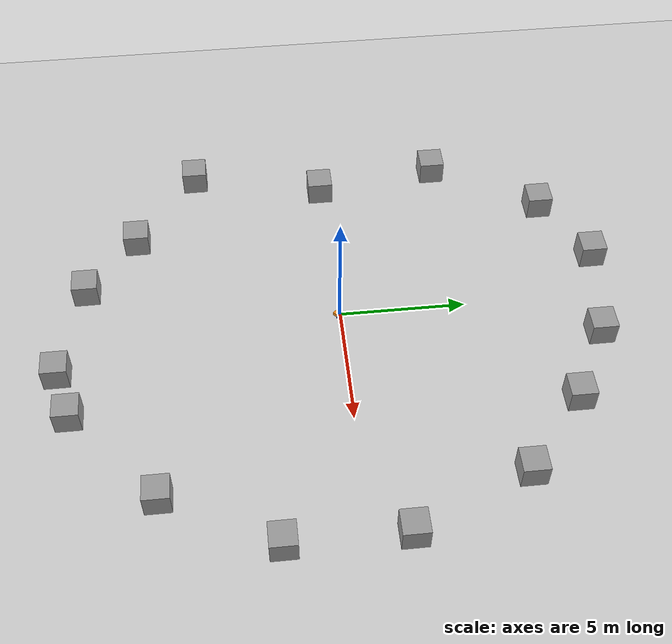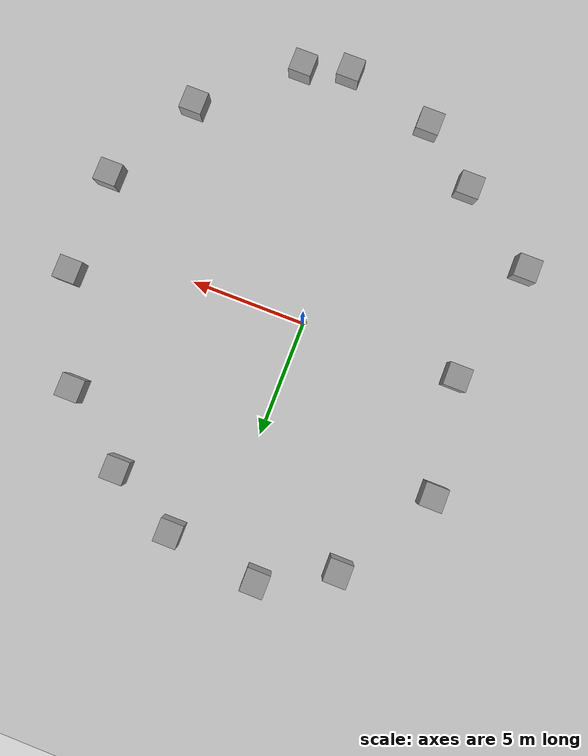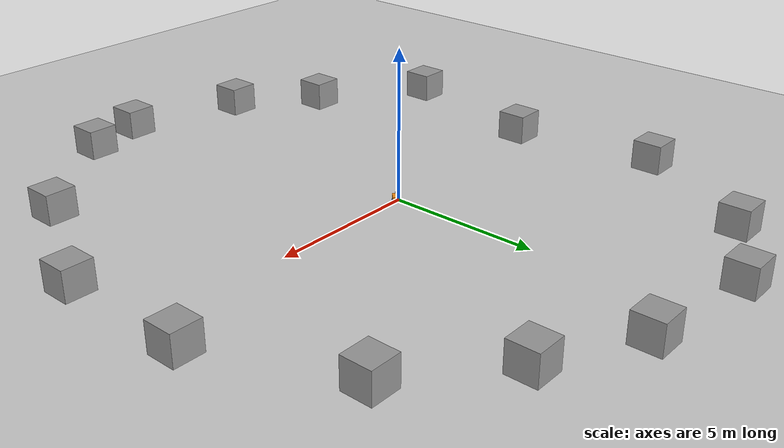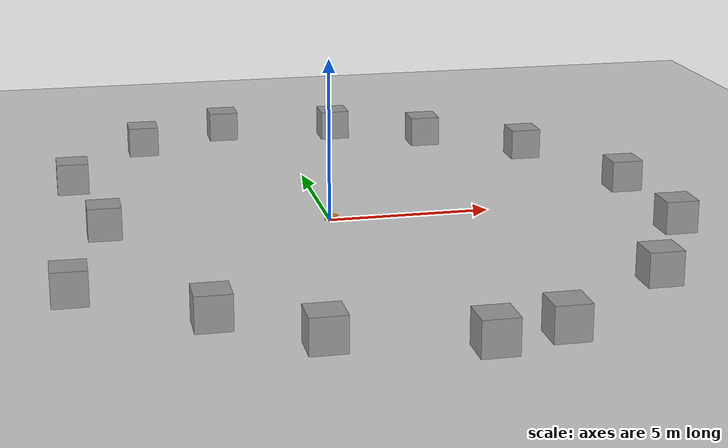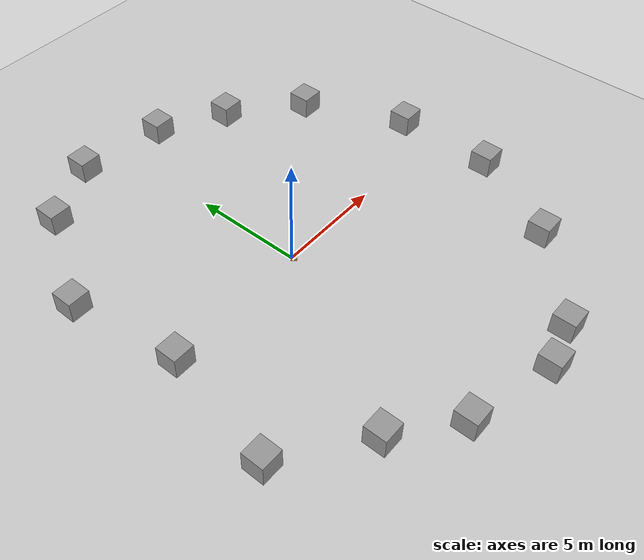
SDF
<sdf version="1.7">
 <world name="default">
  <light name="sun" type="directional">
   <pose>0 0 10 0 -0 0</pose>
   <diffuse>0.8 0.8 0.8 1</diffuse>
   <specular>0.2 0.2 0.2 1</specular>
   <attenuation>
    <range>1000</range>
    <constant>0.9</constant>
    <linear>0.01</linear>
    <quadratic>0.001</quadratic>
   </attenuation>
   <direction>-0.5 0.1 -0.9</direction>
   <spot><inner_angle>0</inner_angle><outer_angle>0</outer_angle><falloff>0</falloff></spot>
  </light>
  <model name="ground_plane">
   <static>1</static>
   <link name="link">
    <collision name="collision">
     <geometry><plane><normal>0 0 1</normal><size>100 100</size></plane></geometry>
     <surface>
      <contact><collide_bitmask>65535</collide_bitmask></contact>
      <friction><ode><mu>100</mu><mu2>50</mu2></ode></friction>
     </surface>
    </collision>
    <visual name="visual">
     <cast_shadows>0</cast_shadows>
     <geometry><plane><normal>0 0 1</normal><size>100 100</size></plane></geometry>
     <material>
      <script><uri>file://media/materials/scripts/gazebo.material</uri><name>Gazebo/Grey</name></script>
     </material>
    </visual>
   </link>
  </model>
  <gravity>0 0 -9.8</gravity>
  <magnetic_field>6e-06 2.3e-05 -4.2e-05</magnetic_field>
  <atmosphere type="adiabatic"/>
  <physics type="ode">
   <max_step_size>0.001</max_step_size>
   <real_time_factor>1</real_time_factor>
   <real_time_update_rate>1000</real_time_update_rate>
  </physics>
  <scene><ambient>0.4 0.4 0.4 1</ambient><background>0.7 0.7 0.7 1</background><shadows>1</shadows></scene>
  <audio><device>default</device></audio>
  <spherical_coordinates>
   <surface_model>EARTH_WGS84</surface_model>
   <latitude_deg>0</latitude_deg>
   <longitude_deg>0</longitude_deg>
   <elevation>0</elevation>
   <heading_deg>0</heading_deg>
  </spherical_coordinates>
  <model name="vicharaka-rover">
   <link name="base_link">
    <inertial>
     <pose>-0.067475 0 0.081098 0 -0 0</pose>
     <mass>0.61</mass>
     <inertia>
      <ixx>0.00561003</ixx>
      <ixy>0</ixy>
      <ixz>0.000453811</ixz>
      <iyy>0.00760348</iyy>
      <iyz>0</iyz>
      <izz>0.00797093</izz>
     </inertia>
    </inertial>
    <collision name="base_link_fixed_joint_lump__chassis_collision">
     <pose>-0.0585 0 0.059 0 -0 0</pose>
     <geometry><box><size>0.335 0.265 0.138</size></box></geometry>
    </collision>
    <collision name="base_link_fixed_joint_lump__caster_wheel_collision_1">
     <pose>-0.151 0 -0.023 0 -0 0</pose>
     <geometry><sphere><radius>0.01</radius></sphere></geometry>
     <surface><friction><ode><mu>0.001</mu><mu2>0.001</mu2></ode></friction></surface>
    </collision>
    <collision name="base_link_fixed_joint_lump__laser_frame_collision_2">
     <pose>-0.104 0 0.202 0 -0 0</pose>
     <geometry><cylinder><length>0.04</length><radius>0.05</radius></cylinder></geometry>
    </collision>
    <visual name="base_link_fixed_joint_lump__chassis_visual">
     <pose>-0.0585 0 0.059 0 -0 0</pose>
     <geometry><box><size>0.335 0.265 0.138</size></box></geometry>
     <material>
      <script><name>Gazebo/Orange</name><uri>file://media/materials/scripts/gazebo.material</uri></script>
     </material>
    </visual>
    <visual name="base_link_fixed_joint_lump__caster_wheel_visual_1">
     <pose>-0.151 0 -0.023 0 -0 0</pose>
     <geometry><sphere><radius>0.01</radius></sphere></geometry>
     <material>
      <script><name>Gazebo/White</name><uri>file://media/materials/scripts/gazebo.material</uri></script>
     </material>
    </visual>
    <visual name="base_link_fixed_joint_lump__laser_frame_visual_2">
     <pose>-0.104 0 0.202 0 -0 0</pose>
     <geometry><cylinder><length>0.04</length><radius>0.05</radius></cylinder></geometry>
     <material>
      <script><name>Gazebo/Black</name><uri>file://media/materials/scripts/gazebo.material</uri></script>
     </material>
    </visual>
    <visual name="base_link_fixed_joint_lump__laser_frame_visual_3">
     <pose>-0.104 0 0.152 0 -0 0</pose>
     <geometry><cylinder><length>0.1</length><radius>0.01</radius></cylinder></geometry>
     <material>
      <script><name>Gazebo/Black</name><uri>file://media/materials/scripts/gazebo.material</uri></script>
     </material>
    </visual>
    <sensor name="laser" type="ray">
     <visualize>1</visualize>
     <update_rate>10</update_rate>
     <ray>
      <scan>
       <horizontal>
        <samples>360</samples>
        <min_angle>-3.14</min_angle>
        <max_angle>3.14</max_angle>
        <resolution>1</resolution>
       </horizontal>
       <vertical><samples>1</samples><min_angle>0</min_angle><max_angle>0</max_angle></vertical>
      </scan>
      <range><min>0.3</min><max>12</max></range>
     </ray>
     <plugin name="laser_controller" filename="libgazebo_ros_ray_sensor.so">
      <ros><argument>~/out:=scan</argument></ros>
      <output_type>sensor_msgs/LaserScan</output_type>
      <frame_name>laser_frame</frame_name>
     </plugin>
     <pose>-0.104 0 0.202 0 -0 0</pose>
    </sensor>
   </link>
   <joint name="left_wheel_joint" type="revolute">
    <pose relative_to="base_link">0 0.1485 0 -1.5708 0 0</pose>
    <parent>base_link</parent>
    <child>left_wheel</child>
    <axis>
     <xyz>0 0 1</xyz>
     <limit><lower>-1e+16</lower><upper>1e+16</upper></limit>
     <dynamics><spring_reference>0</spring_reference><spring_stiffness>0</spring_stiffness></dynamics>
    </axis>
   </joint>
   <link name="left_wheel">
    <pose relative_to="left_wheel_joint">0 0 0 0 -0 0</pose>
    <inertial>
     <mass>0.05</mass>
     <inertia>
      <ixx>1.64292e-05</ixx>
      <ixy>0</ixy>
      <ixz>0</ixz>
      <iyy>1.64292e-05</iyy>
      <iyz>0</iyz>
      <izz>2.7225e-05</izz>
     </inertia>
    </inertial>
    <collision name="left_wheel_collision">
     <geometry><sphere><radius>0.033</radius></sphere></geometry>
    </collision>
    <visual name="left_wheel_visual">
     <geometry><cylinder><length>0.026</length><radius>0.033</radius></cylinder></geometry>
     <material>
      <script><name>Gazebo/Blue</name><uri>file://media/materials/scripts/gazebo.material</uri></script>
     </material>
    </visual>
   </link>
   <joint name="right_wheel_joint" type="revolute">
    <pose relative_to="base_link">0 -0.1485 0 1.5708 -0 0</pose>
    <parent>base_link</parent>
    <child>right_wheel</child>
    <axis>
     <xyz>0 0 -1</xyz>
     <limit><lower>-1e+16</lower><upper>1e+16</upper></limit>
     <dynamics><spring_reference>0</spring_reference><spring_stiffness>0</spring_stiffness></dynamics>
    </axis>
   </joint>
   <link name="right_wheel">
    <pose relative_to="right_wheel_joint">0 0 0 0 -0 0</pose>
    <inertial>
     <mass>0.05</mass>
     <inertia>
      <ixx>1.64292e-05</ixx>
      <ixy>0</ixy>
      <ixz>0</ixz>
      <iyy>1.64292e-05</iyy>
      <iyz>0</iyz>
      <izz>2.7225e-05</izz>
     </inertia>
    </inertial>
    <collision name="right_wheel_collision">
     <geometry><sphere><radius>0.033</radius></sphere></geometry>
    </collision>
    <visual name="right_wheel_visual">
     <geometry><cylinder><length>0.026</length><radius>0.033</radius></cylinder></geometry>
     <material>
      <script><name>Gazebo/Blue</name><uri>file://media/materials/scripts/gazebo.material</uri></script>
     </material>
    </visual>
   </link>
   <static>0</static>
   <plugin name="diff_drive" filename="libgazebo_ros_diff_drive.so">
    <ros><namespace>/demo</namespace><remap from="cmd_vel" to="/cmd_vel"/></ros>
    <left_joint>left_wheel_joint</left_joint>
    <right_joint>right_wheel_joint</right_joint>
    <wheel_separation>0.297</wheel_separation>
    <wheel_diameter>0.066</wheel_diameter>
    <max_wheel_torque>200</max_wheel_torque>
    <max_wheel_acceleration>10.0</max_wheel_acceleration>
    <odometry_frame>odom</odometry_frame>
    <robot_base_frame>base_link</robot_base_frame>
    <publish_odom>1</publish_odom>
    <publish_odom_tf>1</publish_odom_tf>
    <publish_wheel_tf>1</publish_wheel_tf>
   </plugin>
   <pose>0.087039 -0.023892 0.032997 -1.6e-05 1.8e-05 0.755749</pose>
  </model>
  <model name="unit_box">
   <pose>-6.8203 -0.18143 0.5 0 -0 0</pose>
   <link name="link">
    <inertial>
     <mass>1</mass>
     <inertia>
      <ixx>0.166667</ixx>
      <ixy>0</ixy>
      <ixz>0</ixz>
      <iyy>0.166667</iyy>
      <iyz>0</iyz>
      <izz>0.166667</izz>
     </inertia>
    </inertial>
    <collision name="collision"><geometry><box><size>1 1 1</size></box></geometry></collision>
    <visual name="visual">
     <geometry><box><size>1 1 1</size></box></geometry>
     <material>
      <script><name>Gazebo/Grey</name><uri>file://media/materials/scripts/gazebo.material</uri></script>
     </material>
    </visual>
   </link>
  </model>
  <model name="unit_box_0">
   <pose>-7.57934 4.77053 0.5 -0 -0 -0</pose>
   <link name="link">
    <inertial>
     <mass>1</mass>
     <inertia>
      <ixx>0.166667</ixx>
      <ixy>0</ixy>
      <ixz>0</ixz>
      <iyy>0.166667</iyy>
      <iyz>0</iyz>
      <izz>0.166667</izz>
     </inertia>
    </inertial>
    <collision name="collision"><geometry><box><size>1 1 1</size></box></geometry></collision>
    <visual name="visual">
     <geometry><box><size>1 1 1</size></box></geometry>
     <material>
      <script><name>Gazebo/Grey</name><uri>file://media/materials/scripts/gazebo.material</uri></script>
     </material>
    </visual>
   </link>
  </model>
  <model name="unit_box_1">
   <pose>7.77246 -7.2192 0.5 0 -0 0</pose>
   <link name="link">
    <inertial>
     <mass>1</mass>
     <inertia>
      <ixx>0.166667</ixx>
      <ixy>0</ixy>
      <ixz>0</ixz>
      <iyy>0.166667</iyy>
      <iyz>0</iyz>
      <izz>0.166667</izz>
     </inertia>
    </inertial>
    <collision name="collision"><geometry><box><size>1 1 1</size></box></geometry></collision>
    <visual name="visual">
     <geometry><box><size>1 1 1</size></box></geometry>
     <material>
      <script><name>Gazebo/Grey</name><uri>file://media/materials/scripts/gazebo.material</uri></script>
     </material>
    </visual>
   </link>
  </model>
  <model name="unit_box_1_clone">
   <pose>10 -3 0.5 -0 -0 -0</pose>
   <link name="link">
    <inertial>
     <mass>1</mass>
     <inertia>
      <ixx>0.166667</ixx>
      <ixy>0</ixy>
      <ixz>0</ixz>
      <iyy>0.166667</iyy>
      <iyz>0</iyz>
      <izz>0.166667</izz>
     </inertia>
    </inertial>
    <collision name="collision"><geometry><box><size>1 1 1</size></box></geometry></collision>
    <visual name="visual">
     <geometry><box><size>1 1 1</size></box></geometry>
     <material>
      <script><name>Gazebo/Grey</name><uri>file://media/materials/scripts/gazebo.material</uri></script>
     </material>
    </visual>
   </link>
  </model>
  <model name="unit_box_1_clone_0">
   <pose>10 1.47732 0.5 0 -0 0</pose>
   <link name="link">
    <inertial>
     <mass>1</mass>
     <inertia>
      <ixx>0.166667</ixx>
      <ixy>0</ixy>
      <ixz>0</ixz>
      <iyy>0.166667</iyy>
      <iyz>0</iyz>
      <izz>0.166667</izz>
     </inertia>
    </inertial>
    <collision name="collision"><geometry><box><size>1 1 1</size></box></geometry></collision>
    <visual name="visual">
     <geometry><box><size>1 1 1</size></box></geometry>
     <material>
      <script><name>Gazebo/Grey</name><uri>file://media/materials/scripts/gazebo.material</uri></script>
     </material>
    </visual>
   </link>
  </model>
  <model name="unit_box_1_clone_1">
   <pose>8 6 0.5 0 -0 0</pose>
   <link name="link">
    <inertial>
     <mass>1</mass>
     <inertia>
      <ixx>0.166667</ixx>
      <ixy>0</ixy>
      <ixz>0</ixz>
      <iyy>0.166667</iyy>
      <iyz>0</iyz>
      <izz>0.166667</izz>
     </inertia>
    </inertial>
    <collision name="collision"><geometry><box><size>1 1 1</size></box></geometry></collision>
    <visual name="visual">
     <geometry><box><size>1 1 1</size></box></geometry>
     <material>
      <script><name>Gazebo/Grey</name><uri>file://media/materials/scripts/gazebo.material</uri></script>
     </material>
    </visual>
   </link>
  </model>
  <model name="unit_box_1_clone_2">
   <pose>5 8.43452 0.5 0 -0 0</pose>
   <link name="link">
    <inertial>
     <mass>1</mass>
     <inertia>
      <ixx>0.166667</ixx>
      <ixy>0</ixy>
      <ixz>0</ixz>
      <iyy>0.166667</iyy>
      <iyz>0</iyz>
      <izz>0.166667</izz>
     </inertia>
    </inertial>
    <collision name="collision"><geometry><box><size>1 1 1</size></box></geometry></collision>
    <visual name="visual">
     <geometry><box><size>1 1 1</size></box></geometry>
     <material>
      <script><name>Gazebo/Grey</name><uri>file://media/materials/scripts/gazebo.material</uri></script>
     </material>
    </visual>
   </link>
  </model>
  <model name="unit_box_1_clone_3">
   <pose>2 10 0.5 -0 -0 -0</pose>
   <link name="link">
    <inertial>
     <mass>1</mass>
     <inertia>
      <ixx>0.166667</ixx>
      <ixy>0</ixy>
      <ixz>0</ixz>
      <iyy>0.166667</iyy>
      <iyz>0</iyz>
      <izz>0.166667</izz>
     </inertia>
    </inertial>
    <collision name="collision"><geometry><box><size>1 1 1</size></box></geometry></collision>
    <visual name="visual">
     <geometry><box><size>1 1 1</size></box></geometry>
     <material>
      <script><name>Gazebo/Grey</name><uri>file://media/materials/scripts/gazebo.material</uri></script>
     </material>
    </visual>
   </link>
  </model>
  <model name="unit_box_1_clone_4">
   <pose>-2 10.5714 0.5 0 -0 0</pose>
   <link name="link">
    <inertial>
     <mass>1</mass>
     <inertia>
      <ixx>0.166667</ixx>
      <ixy>0</ixy>
      <ixz>0</ixz>
      <iyy>0.166667</iyy>
      <iyz>0</iyz>
      <izz>0.166667</izz>
     </inertia>
    </inertial>
    <collision name="collision"><geometry><box><size>1 1 1</size></box></geometry></collision>
    <visual name="visual">
     <geometry><box><size>1 1 1</size></box></geometry>
     <material>
      <script><name>Gazebo/Grey</name><uri>file://media/materials/scripts/gazebo.material</uri></script>
     </material>
    </visual>
   </link>
  </model>
  <model name="unit_box_1_clone_5">
   <pose>-5 9 0.5 0 -0 0</pose>
   <link name="link">
    <inertial>
     <mass>1</mass>
     <inertia>
      <ixx>0.166667</ixx>
      <ixy>0</ixy>
      <ixz>0</ixz>
      <iyy>0.166667</iyy>
      <iyz>0</iyz>
      <izz>0.166667</izz>
     </inertia>
    </inertial>
    <collision name="collision"><geometry><box><size>1 1 1</size></box></geometry></collision>
    <visual name="visual">
     <geometry><box><size>1 1 1</size></box></geometry>
     <material>
      <script><name>Gazebo/Grey</name><uri>file://media/materials/scripts/gazebo.material</uri></script>
     </material>
    </visual>
   </link>
  </model>
  <model name="unit_box_1_clone_6">
   <pose>-8 -5.518 0.5 0 -0 0</pose>
   <link name="link">
    <inertial>
     <mass>1</mass>
     <inertia>
      <ixx>0.166667</ixx>
      <ixy>0</ixy>
      <ixz>0</ixz>
      <iyy>0.166667</iyy>
      <iyz>0</iyz>
      <izz>0.166667</izz>
     </inertia>
    </inertial>
    <collision name="collision"><geometry><box><size>1 1 1</size></box></geometry></collision>
    <visual name="visual">
     <geometry><box><size>1 1 1</size></box></geometry>
     <material>
      <script><name>Gazebo/Grey</name><uri>file://media/materials/scripts/gazebo.material</uri></script>
     </material>
    </visual>
   </link>
  </model>
  <model name="unit_box_1_clone_7">
   <pose>-4.5359 -8 0.499995 1e-05 -0 0</pose>
   <link name="link">
    <inertial>
     <mass>1</mass>
     <inertia>
      <ixx>0.166667</ixx>
      <ixy>0</ixy>
      <ixz>0</ixz>
      <iyy>0.166667</iyy>
      <iyz>0</iyz>
      <izz>0.166667</izz>
     </inertia>
    </inertial>
    <collision name="collision"><geometry><box><size>1 1 1</size></box></geometry></collision>
    <visual name="visual">
     <geometry><box><size>1 1 1</size></box></geometry>
     <material>
      <script><name>Gazebo/Grey</name><uri>file://media/materials/scripts/gazebo.material</uri></script>
     </material>
    </visual>
   </link>
  </model>
  <model name="unit_box_1_clone_8">
   <pose>-2 -10 0.5 0 -0 0</pose>
   <link name="link">
    <inertial>
     <mass>1</mass>
     <inertia>
      <ixx>0.166667</ixx>
      <ixy>0</ixy>
      <ixz>0</ixz>
      <iyy>0.166667</iyy>
      <iyz>0</iyz>
      <izz>0.166667</izz>
     </inertia>
    </inertial>
    <collision name="collision"><geometry><box><size>1 1 1</size></box></geometry></collision>
    <visual name="visual">
     <geometry><box><size>1 1 1</size></box></geometry>
     <material>
      <script><name>Gazebo/Grey</name><uri>file://media/materials/scripts/gazebo.material</uri></script>
     </material>
    </visual>
   </link>
  </model>
  <model name="unit_box_1_clone_9">
   <pose>1.99999 -11 0.499995 -1e-05 0 0</pose>
   <link name="link">
    <inertial>
     <mass>1</mass>
     <inertia>
      <ixx>0.166667</ixx>
      <ixy>0</ixy>
      <ixz>0</ixz>
      <iyy>0.166667</iyy>
      <iyz>0</iyz>
      <izz>0.166667</izz>
     </inertia>
    </inertial>
    <collision name="collision"><geometry><box><size>1 1 1</size></box></geometry></collision>
    <visual name="visual">
     <geometry><box><size>1 1 1</size></box></geometry>
     <material>
      <script><name>Gazebo/Grey</name><uri>file://media/materials/scripts/gazebo.material</uri></script>
     </material>
    </visual>
   </link>
  </model>
  <model name="unit_box_1_clone_10">
   <pose>4 -10.4751 0.499995 1e-05 -0 0</pose>
   <link name="link">
    <inertial>
     <mass>1</mass>
     <inertia>
      <ixx>0.166667</ixx>
      <ixy>0</ixy>
      <ixz>0</ixz>
      <iyy>0.166667</iyy>
      <iyz>0</iyz>
      <izz>0.166667</izz>
     </inertia>
    </inertial>
    <collision name="collision"><geometry><box><size>1 1 1</size></box></geometry></collision>
    <visual name="visual">
     <geometry><box><size>1 1 1</size></box></geometry>
     <material>
      <script><name>Gazebo/Grey</name><uri>file://media/materials/scripts/gazebo.material</uri></script>
     </material>
    </visual>
   </link>
  </model>
 </world>
</sdf>
